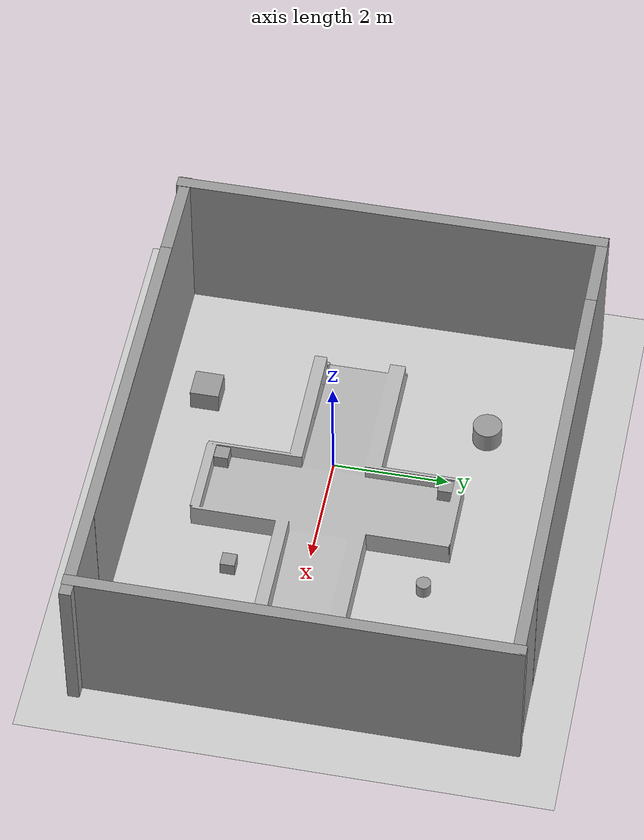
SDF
<sdf version="1.6">
 <world name="default">
  <light name="sun" type="directional">
   <pose>0 0 10 0 -0 0</pose>
   <diffuse>0.8 0.8 0.8 1</diffuse>
   <specular>0.2 0.2 0.2 1</specular>
   <attenuation>
    <range>1000</range>
    <constant>0.9</constant>
    <linear>0.01</linear>
    <quadratic>0.001</quadratic>
   </attenuation>
   <direction>-0.5 0.1 -0.9</direction>
  </light>
  <model name="ground_plane">
   <static>1</static>
   <link name="link">
    <collision name="collision">
     <geometry><plane><normal>0 0 1</normal><size>100 100</size></plane></geometry>
     <surface>
      <contact><collide_bitmask>65535</collide_bitmask></contact>
      <friction><ode><mu>100</mu><mu2>50</mu2></ode></friction>
     </surface>
    </collision>
    <visual name="visual">
     <cast_shadows>0</cast_shadows>
     <geometry><plane><normal>0 0 1</normal><size>100 100</size></plane></geometry>
     <material>
      <script><uri>file://media/materials/scripts/gazebo.material</uri><name>Gazebo/Grey</name></script>
     </material>
    </visual>
   </link>
  </model>
  <gravity>0 0 -9.8</gravity>
  <magnetic_field>6e-06 2.3e-05 -4.2e-05</magnetic_field>
  <atmosphere type="adiabatic"/>
  <physics name="default_physics" default="0" type="ode">
   <max_step_size>0.001</max_step_size>
   <real_time_factor>1</real_time_factor>
   <real_time_update_rate>1000</real_time_update_rate>
  </physics>
  <scene><ambient>0.4 0.4 0.4 1</ambient><background>0.7 0.7 0.7 1</background><shadows>1</shadows></scene>
  <audio><device>default</device></audio>
  <spherical_coordinates>
   <surface_model>EARTH_WGS84</surface_model>
   <latitude_deg>0</latitude_deg>
   <longitude_deg>0</longitude_deg>
   <elevation>0</elevation>
   <heading_deg>0</heading_deg>
  </spherical_coordinates>
  <model name="environment">
   <static>1</static>
   <link name="base">
    <visual name="visual">
     <geometry>
      <mesh><uri>model://slope_environment/meshes/slope_environment.stl</uri><scale>0.55 0.55 0.55</scale></mesh>
     </geometry>
    </visual>
    <collision name="environment_collision">
     <geometry>
      <mesh><uri>model://slope_environment/meshes/slope_environment.stl</uri><scale>0.55 0.55 0.55</scale></mesh>
     </geometry>
     <surface><friction><ode><mu>0.8</mu><mu2>0.4</mu2></ode></friction></surface>
    </collision>
   </link>
   <pose>-1.88183 1.16549 -0.826192 1.57 -0 0</pose>
  </model>
  <model name="grey_wall">
   <static>1</static>
   <link name="link">
    <pose>0 0 1.4 0 -0 0</pose>
    <collision name="collision"><geometry><box><size>7.5 0.2 2.8</size></box></geometry></collision>
    <visual name="visual">
     <cast_shadows>0</cast_shadows>
     <geometry><box><size>7.5 0.2 2.8</size></box></geometry>
     <material>
      <script>
       <uri>model://grey_wall/materials/scripts</uri>
       <uri>model://grey_wall/materials/textures</uri>
       <name>vrc/grey_wall</name>
      </script>
     </material>
    </visual>
   </link>
   <pose>0.19231 -3.25918 -0.00603 0 -0 0</pose>
  </model>
  <model name="grey_wall_clone">
   <static>1</static>
   <link name="link">
    <pose>0 0 1.4 0 -0 0</pose>
    <collision name="collision"><geometry><box><size>7.5 0.2 2.8</size></box></geometry></collision>
    <visual name="visual">
     <cast_shadows>0</cast_shadows>
     <geometry><box><size>7.5 0.2 2.8</size></box></geometry>
     <material>
      <script>
       <uri>model://grey_wall/materials/scripts</uri>
       <uri>model://grey_wall/materials/textures</uri>
       <name>vrc/grey_wall</name>
      </script>
     </material>
    </visual>
   </link>
   <pose>1.82885 -3.26102 0 0 -0 0</pose>
  </model>
  <model name="grey_wall_clone_0">
   <static>1</static>
   <link name="link">
    <pose>0 0 1.4 0 -0 0</pose>
    <collision name="collision"><geometry><box><size>7.5 0.2 2.8</size></box></geometry></collision>
    <visual name="visual">
     <cast_shadows>0</cast_shadows>
     <geometry><box><size>7.5 0.2 2.8</size></box></geometry>
     <material>
      <script>
       <uri>model://grey_wall/materials/scripts</uri>
       <uri>model://grey_wall/materials/textures</uri>
       <name>vrc/grey_wall</name>
      </script>
     </material>
    </visual>
   </link>
   <pose>0.201971 4.0063 0 0 -0 0</pose>
  </model>
  <model name="grey_wall_clone_1">
   <static>1</static>
   <link name="link">
    <pose>0 0 1.4 0 -0 0</pose>
    <collision name="collision"><geometry><box><size>7.5 0.2 2.8</size></box></geometry></collision>
    <visual name="visual">
     <cast_shadows>0</cast_shadows>
     <geometry><box><size>7.5 0.2 2.8</size></box></geometry>
     <material>
      <script>
       <uri>model://grey_wall/materials/scripts</uri>
       <uri>model://grey_wall/materials/textures</uri>
       <name>vrc/grey_wall</name>
      </script>
     </material>
    </visual>
   </link>
   <pose>1.62411 4.00369 0 0 -0 0</pose>
  </model>
  <model name="grey_wall_clone_0_clone_0">
   <static>1</static>
   <link name="link">
    <pose>0 0 1.4 0 -0 0</pose>
    <collision name="collision"><geometry><box><size>7.5 0.2 2.8</size></box></geometry></collision>
    <visual name="visual">
     <cast_shadows>0</cast_shadows>
     <geometry><box><size>7.5 0.2 2.8</size></box></geometry>
     <material>
      <script>
       <uri>model://grey_wall/materials/scripts</uri>
       <uri>model://grey_wall/materials/textures</uri>
       <name>vrc/grey_wall</name>
      </script>
     </material>
    </visual>
   </link>
   <pose>-3.4433 0.345953 0 0 -0 1.57097</pose>
  </model>
  <model name="grey_wall_clone_0_clone_clone">
   <static>1</static>
   <link name="link">
    <pose>0 0 1.4 0 -0 0</pose>
    <collision name="collision"><geometry><box><size>7.5 0.2 2.8</size></box></geometry></collision>
    <visual name="visual">
     <cast_shadows>0</cast_shadows>
     <geometry><box><size>7.5 0.2 2.8</size></box></geometry>
     <material>
      <script>
       <uri>model://grey_wall/materials/scripts</uri>
       <uri>model://grey_wall/materials/textures</uri>
       <name>vrc/grey_wall</name>
      </script>
     </material>
    </visual>
   </link>
   <pose>5.2771 0.380177 0 0 0 -1.57</pose>
  </model>
  <model name="unit_box_clone">
   <pose>-1.05529 -2.43072 0.125 0 -0 -4.5e-05</pose>
   <link name="link">
    <inertial>
     <mass>1</mass>
     <inertia>
      <ixx>0.166667</ixx>
      <ixy>0</ixy>
      <ixz>0</ixz>
      <iyy>0.166667</iyy>
      <iyz>0</iyz>
      <izz>0.166667</izz>
     </inertia>
    </inertial>
    <collision name="collision"><geometry><box><size>0.5 0.5 0.5</size></box></geometry></collision>
    <visual name="visual">
     <geometry><box><size>0.5 0.5 0.5</size></box></geometry>
     <material>
      <script><name>Gazebo/Grey</name><uri>file://media/materials/scripts/gazebo.material</uri></script>
     </material>
    </visual>
   </link>
  </model>
  <model name="unit_cylinder_clone">
   <pose>-1.06079 2.49031 0.125233 -0.001866 0.000155 -0.036863</pose>
   <link name="link">
    <inertial>
     <mass>1</mass>
     <inertia><ixx>0.145833</ixx><ixy>0</ixy><ixz>0</ixz><iyy>0.145833</iyy><iyz>0</iyz><izz>0.125</izz></inertia>
    </inertial>
    <collision name="collision">
     <geometry><cylinder><radius>0.25</radius><length>0.5</length></cylinder></geometry>
    </collision>
    <visual name="visual">
     <geometry><cylinder><radius>0.25</radius><length>0.5</length></cylinder></geometry>
     <material>
      <script><name>Gazebo/Grey</name><uri>file://media/materials/scripts/gazebo.material</uri></script>
     </material>
    </visual>
   </link>
  </model>
  <model name="unit_box_clone_clone">
   <pose>2.50758 -1.30239 0.125 0 -0 -4.5e-05</pose>
   <link name="link">
    <inertial>
     <mass>1</mass>
     <inertia>
      <ixx>0.166667</ixx>
      <ixy>0</ixy>
      <ixz>0</ixz>
      <iyy>0.166667</iyy>
      <iyz>0</iyz>
      <izz>0.166667</izz>
     </inertia>
    </inertial>
    <collision name="collision"><geometry><box><size>0.25 0.25 0.25</size></box></geometry></collision>
    <visual name="visual">
     <geometry><box><size>0.25 0.25 0.25</size></box></geometry>
     <material>
      <script><name>Gazebo/Grey</name><uri>file://media/materials/scripts/gazebo.material</uri></script>
     </material>
    </visual>
   </link>
  </model>
  <model name="unit_box_clone_clone_0">
   <pose>0.449439 -1.84317 0.346202 1.57 -4e-06 -0.00281</pose>
   <link name="link">
    <inertial>
     <mass>1</mass>
     <inertia>
      <ixx>0.166667</ixx>
      <ixy>0</ixy>
      <ixz>0</ixz>
      <iyy>0.166667</iyy>
      <iyz>0</iyz>
      <izz>0.166667</izz>
     </inertia>
    </inertial>
    <collision name="collision"><geometry><box><size>0.25 0.25 0.25</size></box></geometry></collision>
    <visual name="visual">
     <geometry><box><size>0.25 0.25 0.25</size></box></geometry>
     <material>
      <script><name>Gazebo/Grey</name><uri>file://media/materials/scripts/gazebo.material</uri></script>
     </material>
    </visual>
   </link>
  </model>
  <model name="unit_cylinder_clone_clone_0">
   <pose>2.37522 1.99526 0.124995 3e-06 -0 0.013113</pose>
   <link name="link">
    <inertial>
     <mass>1</mass>
     <inertia><ixx>0.145833</ixx><ixy>0</ixy><ixz>0</ixz><iyy>0.145833</iyy><iyz>0</iyz><izz>0.125</izz></inertia>
    </inertial>
    <collision name="collision">
     <geometry><cylinder><radius>0.125</radius><length>0.25</length></cylinder></geometry>
    </collision>
    <visual name="visual">
     <geometry><cylinder><radius>0.125</radius><length>0.25</length></cylinder></geometry>
     <material>
      <script><name>Gazebo/Grey</name><uri>file://media/materials/scripts/gazebo.material</uri></script>
     </material>
    </visual>
   </link>
  </model>
  <model name="unit_cylinder_clone_clone_1">
   <pose>3.57113 3.03194 0.124994 -3e-06 0 0.013113</pose>
   <link name="link">
    <inertial>
     <mass>1</mass>
     <inertia><ixx>0.145833</ixx><ixy>0</ixy><ixz>0</ixz><iyy>0.145833</iyy><iyz>0</iyz><izz>0.125</izz></inertia>
    </inertial>
    <collision name="collision">
     <geometry><cylinder><radius>0.125</radius><length>0.25</length></cylinder></geometry>
    </collision>
    <visual name="visual">
     <geometry><cylinder><radius>0.125</radius><length>0.25</length></cylinder></geometry>
     <material>
      <script><name>Gazebo/Grey</name><uri>file://media/materials/scripts/gazebo.material</uri></script>
     </material>
    </visual>
   </link>
  </model>
  <model name="unit_box_clone_clone_clone">
   <pose>3.46836 -2.37781 0.125 0 -0 -4.5e-05</pose>
   <link name="link">
    <inertial>
     <mass>1</mass>
     <inertia>
      <ixx>0.166667</ixx>
      <ixy>0</ixy>
      <ixz>0</ixz>
      <iyy>0.166667</iyy>
      <iyz>0</iyz>
      <izz>0.166667</izz>
     </inertia>
    </inertial>
    <collision name="collision"><geometry><box><size>0.25 0.25 0.25</size></box></geometry></collision>
    <visual name="visual">
     <geometry><box><size>0.25 0.25 0.25</size></box></geometry>
     <material>
      <script><name>Gazebo/Grey</name><uri>file://media/materials/scripts/gazebo.material</uri></script>
     </material>
    </visual>
   </link>
  </model>
  <model name="unit_box_clone_clone_0_clone">
   <pose>0.452382 2.0309 0.34311 1.57 -2e-06 -0.002334</pose>
   <link name="link">
    <inertial>
     <mass>1</mass>
     <inertia>
      <ixx>0.166667</ixx>
      <ixy>0</ixy>
      <ixz>0</ixz>
      <iyy>0.166667</iyy>
      <iyz>0</iyz>
      <izz>0.166667</izz>
     </inertia>
    </inertial>
    <collision name="collision"><geometry><box><size>0.25 0.25 0.25</size></box></geometry></collision>
    <visual name="visual">
     <geometry><box><size>0.25 0.25 0.25</size></box></geometry>
     <material>
      <script><name>Gazebo/Grey</name><uri>file://media/materials/scripts/gazebo.material</uri></script>
     </material>
    </visual>
   </link>
  </model>
 </world>
</sdf>
